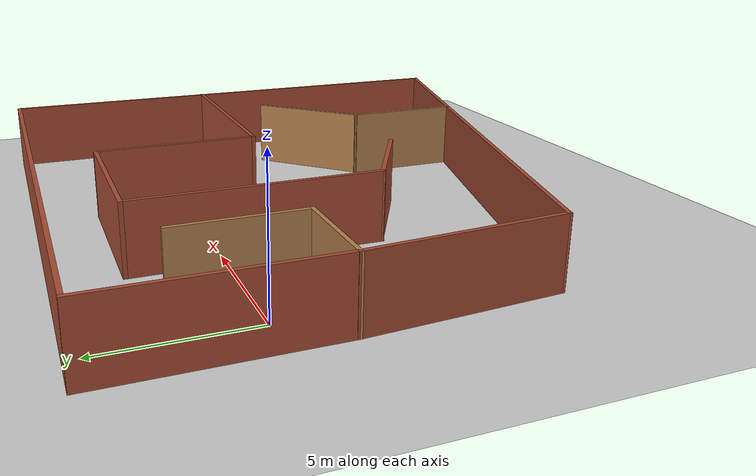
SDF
<sdf version="1.7">
 <world name="default">
  <light name="sun" type="directional">
   <pose>0 0 10 0 -0 0</pose>
   <diffuse>0.8 0.8 0.8 1</diffuse>
   <specular>0.2 0.2 0.2 1</specular>
   <attenuation>
    <range>1000</range>
    <constant>0.9</constant>
    <linear>0.01</linear>
    <quadratic>0.001</quadratic>
   </attenuation>
   <direction>-0.5 0.1 -0.9</direction>
   <spot><inner_angle>0</inner_angle><outer_angle>0</outer_angle><falloff>0</falloff></spot>
  </light>
  <model name="ground_plane">
   <static>1</static>
   <link name="link">
    <collision name="collision">
     <geometry><plane><normal>0 0 1</normal><size>100 100</size></plane></geometry>
     <surface>
      <contact><collide_bitmask>65535</collide_bitmask></contact>
      <friction><ode><mu>100</mu><mu2>50</mu2></ode></friction>
     </surface>
    </collision>
    <visual name="visual">
     <cast_shadows>0</cast_shadows>
     <geometry><plane><normal>0 0 1</normal><size>100 100</size></plane></geometry>
     <material>
      <script><uri>file://media/materials/scripts/gazebo.material</uri><name>Gazebo/Grey</name></script>
     </material>
    </visual>
   </link>
  </model>
  <gravity>0 0 -9.8</gravity>
  <magnetic_field>6e-06 2.3e-05 -4.2e-05</magnetic_field>
  <atmosphere type="adiabatic"/>
  <physics type="ode">
   <max_step_size>0.001</max_step_size>
   <real_time_factor>1</real_time_factor>
   <real_time_update_rate>1000</real_time_update_rate>
  </physics>
  <scene><ambient>0.4 0.4 0.4 1</ambient><background>0.7 0.7 0.7 1</background><shadows>1</shadows></scene>
  <audio><device>default</device></audio>
  <spherical_coordinates>
   <surface_model>EARTH_WGS84</surface_model>
   <latitude_deg>0</latitude_deg>
   <longitude_deg>0</longitude_deg>
   <elevation>0</elevation>
   <heading_deg>0</heading_deg>
  </spherical_coordinates>
  <model name="simple_maze">
   <pose>8.19795 -4.16539 0 0 -0 0</pose>
   <link name="Wall_0">
    <collision name="Wall_0_Collision">
     <geometry><box><size>7.5 0.15 2.5</size></box></geometry>
     <pose>0 0 1.25 0 -0 0</pose>
    </collision>
    <visual name="Wall_0_Visual">
     <pose>0 0 1.25 0 -0 0</pose>
     <geometry><box><size>7.5 0.15 2.5</size></box></geometry>
     <material>
      <script><uri>file://media/materials/scripts/gazebo.material</uri><name>Gazebo/Bricks</name></script>
      <ambient>1 1 1 1</ambient>
     </material>
     <meta><layer>0</layer></meta>
    </visual>
    <pose>-9.70403 5.88343 0 0 -0 1.5708</pose>
   </link>
   <link name="Wall_1">
    <collision name="Wall_1_Collision">
     <geometry><box><size>19.5 0.15 2.5</size></box></geometry>
     <pose>0 0 1.25 0 -0 0</pose>
    </collision>
    <visual name="Wall_1_Visual">
     <pose>0 0 1.25 0 -0 0</pose>
     <geometry><box><size>19.5 0.15 2.5</size></box></geometry>
     <material>
      <script><uri>file://media/materials/scripts/gazebo.material</uri><name>Gazebo/Bricks</name></script>
      <ambient>1 1 1 1</ambient>
     </material>
     <meta><layer>0</layer></meta>
    </visual>
    <pose>-0.029029 9.55843 0 0 -0 0</pose>
   </link>
   <link name="Wall_12">
    <collision name="Wall_12_Collision">
     <geometry><box><size>8.07036 0.15 2.5</size></box></geometry>
     <pose>0 0 1.25 0 -0 0</pose>
    </collision>
    <visual name="Wall_12_Visual">
     <pose>0 0 1.25 0 -0 0</pose>
     <geometry><box><size>8.07036 0.15 2.5</size></box></geometry>
     <material>
      <script><uri>file://media/materials/scripts/gazebo.material</uri><name>Gazebo/Bricks</name></script>
      <ambient>1 1 1 1</ambient>
     </material>
     <meta><layer>0</layer></meta>
    </visual>
    <pose>5.74839 1.49503 0 0 -0 0</pose>
   </link>
   <link name="Wall_16">
    <collision name="Wall_16_Collision">
     <geometry><box><size>6 0.15 2.5</size></box></geometry>
     <pose>0 0 1.25 0 -0 0</pose>
    </collision>
    <visual name="Wall_16_Visual">
     <pose>0 0 1.25 0 -0 0</pose>
     <geometry><box><size>6 0.15 2.5</size></box></geometry>
     <material>
      <script><uri>file://media/materials/scripts/gazebo.material</uri><name>Gazebo/Bricks</name></script>
      <ambient>1 1 1 1</ambient>
     </material>
     <meta><layer>0</layer></meta>
    </visual>
    <pose>1.78821 4.42003 0 0 -0 1.5708</pose>
   </link>
   <link name="Wall_17">
    <collision name="Wall_17_Collision">
     <geometry><box><size>5.75 0.15 2.5</size></box></geometry>
     <pose>0 0 1.25 0 -0 0</pose>
    </collision>
    <visual name="Wall_17_Visual">
     <pose>0 0 1.25 0 -0 0</pose>
     <geometry><box><size>5.75 0.15 2.5</size></box></geometry>
     <material>
      <script><uri>file://media/materials/scripts/gazebo.material</uri><name>Gazebo/Bricks</name></script>
      <ambient>1 1 1 1</ambient>
     </material>
     <meta><layer>0</layer></meta>
    </visual>
    <pose>-1.01179 7.34503 0 0 -0 3.14159</pose>
   </link>
   <link name="Wall_18">
    <collision name="Wall_18_Collision">
     <geometry><box><size>8.75 0.15 2.5</size></box></geometry>
     <pose>0 0 1.25 0 -0 0</pose>
    </collision>
    <visual name="Wall_18_Visual">
     <pose>0 0 1.25 0 -0 0</pose>
     <geometry><box><size>8.75 0.15 2.5</size></box></geometry>
     <material>
      <script><uri>file://media/materials/scripts/gazebo.material</uri><name>Gazebo/Bricks</name></script>
      <ambient>1 1 1 1</ambient>
     </material>
     <meta><layer>0</layer></meta>
    </visual>
    <pose>-3.81179 3.04503 0 0 -0 -1.5708</pose>
   </link>
   <link name="Wall_19">
    <collision name="Wall_19_Collision">
     <geometry><box><size>4 0.15 2.5</size></box></geometry>
     <pose>0 0 1.25 0 -0 0</pose>
    </collision>
    <visual name="Wall_19_Visual">
     <pose>0 0 1.25 0 -0 0</pose>
     <geometry><box><size>4 0.15 2.5</size></box></geometry>
     <material>
      <script><uri>file://media/materials/scripts/gazebo.material</uri><name>Gazebo/Bricks</name></script>
      <ambient>1 1 1 1</ambient>
     </material>
     <meta><layer>0</layer></meta>
    </visual>
    <pose>-2.14469 -2.21747 0 0 -0 -0.523599</pose>
   </link>
   <link name="Wall_2">
    <collision name="Wall_2_Collision">
     <geometry><box><size>19.25 0.15 2.5</size></box></geometry>
     <pose>0 0 1.25 0 -0 0</pose>
    </collision>
    <visual name="Wall_2_Visual">
     <pose>0 0 1.25 0 -0 0</pose>
     <geometry><box><size>19.25 0.15 2.5</size></box></geometry>
     <material>
      <script><uri>file://media/materials/scripts/gazebo.material</uri><name>Gazebo/Bricks</name></script>
      <ambient>1 1 1 1</ambient>
     </material>
     <meta><layer>0</layer></meta>
    </visual>
    <pose>9.64597 0.008427 0 0 -0 -1.5708</pose>
   </link>
   <link name="Wall_3">
    <collision name="Wall_3_Collision">
     <geometry><box><size>19.75 0.15 2.5</size></box></geometry>
     <pose>0 0 1.25 0 -0 0</pose>
    </collision>
    <visual name="Wall_3_Visual">
     <pose>0 0 1.25 0 -0 0</pose>
     <geometry><box><size>19.75 0.15 2.5</size></box></geometry>
     <material>
      <script><uri>file://media/materials/scripts/gazebo.material</uri><name>Gazebo/Bricks</name></script>
      <ambient>1 1 1 1</ambient>
     </material>
     <meta><layer>0</layer></meta>
    </visual>
    <pose>0.179898 -7.00515 0 0 -0 2.87979</pose>
   </link>
   <link name="Wall_4">
    <collision name="Wall_4_Collision">
     <geometry><box><size>6.84021 0.15 2.5</size></box></geometry>
     <pose>0 0 1.25 0 -0 0</pose>
    </collision>
    <visual name="Wall_4_Visual">
     <pose>0 0 1.25 0 -0 0</pose>
     <geometry><box><size>6.84021 0.15 2.5</size></box></geometry>
     <material>
      <script><uri>file://media/materials/scripts/gazebo.material</uri><name>Gazebo/Bricks</name></script>
      <ambient>1 1 1 1</ambient>
     </material>
     <meta><layer>0</layer></meta>
    </visual>
    <pose>-9.4951 -1.13015 0 0 -0 1.63329</pose>
   </link>
   <link name="Wall_5">
    <collision name="Wall_5_Collision">
     <geometry><box><size>3.5 0.15 2.5</size></box></geometry>
     <pose>0 0 1.25 0 -0 0</pose>
    </collision>
    <visual name="Wall_5_Visual">
     <pose>0 0 1.25 0 -0 0</pose>
     <geometry><box><size>3.5 0.15 2.5</size></box></geometry>
     <material>
      <script><uri>file://media/materials/scripts/gazebo.material</uri><name>Gazebo/Wood</name></script>
      <ambient>1 1 1 1</ambient>
     </material>
     <meta><layer>0</layer></meta>
    </visual>
    <pose>-8.02903 2.20843 0 0 -0 0</pose>
   </link>
   <link name="Wall_6">
    <collision name="Wall_6_Collision">
     <geometry><box><size>4.5 0.15 2.5</size></box></geometry>
     <pose>0 0 1.25 0 -0 0</pose>
    </collision>
    <visual name="Wall_6_Visual">
     <pose>0 0 1.25 0 -0 0</pose>
     <geometry><box><size>4.5 0.15 2.5</size></box></geometry>
     <material>
      <script><uri>file://media/materials/scripts/gazebo.material</uri><name>Gazebo/Wood</name></script>
      <ambient>1 1 1 1</ambient>
     </material>
     <meta><layer>0</layer></meta>
    </visual>
    <pose>-6.35403 4.38343 0 0 -0 1.5708</pose>
   </link>
   <link name="Wall_8">
    <collision name="Wall_8_Collision">
     <geometry><box><size>4.5 0.15 2.5</size></box></geometry>
     <pose>0 0 1.25 0 -0 0</pose>
    </collision>
    <visual name="Wall_8_Visual">
     <pose>0 0 1.25 0 -0 0</pose>
     <geometry><box><size>4.5 0.15 2.5</size></box></geometry>
     <material>
      <script><uri>file://media/materials/scripts/gazebo.material</uri><name>Gazebo/Wood</name></script>
      <ambient>1 1 1 1</ambient>
     </material>
     <meta><layer>0</layer></meta>
    </visual>
    <pose>3.57995 -5.72296 0 0 -0 1.5708</pose>
   </link>
   <link name="Wall_9">
    <collision name="Wall_9_Collision">
     <geometry><box><size>4.5 0.15 2.5</size></box></geometry>
     <pose>0 0 1.25 0 -0 0</pose>
    </collision>
    <visual name="Wall_9_Visual">
     <pose>0 0 1.25 0 -0 0</pose>
     <geometry><box><size>4.5 0.15 2.5</size></box></geometry>
     <material>
      <script><uri>file://media/materials/scripts/gazebo.material</uri><name>Gazebo/Wood</name></script>
      <ambient>1 1 1 1</ambient>
     </material>
     <meta><layer>0</layer></meta>
    </visual>
    <pose>5.11791 -2.01001 0 0 -0 0.785398</pose>
   </link>
   <static>1</static>
  </model>
  <model name="bookshelf">
   <static>1</static>
   <link name="link">
    <inertial><mass>1</mass></inertial>
    <collision name="back">
     <pose>0 0.005 0.6 0 -0 0</pose>
     <geometry><box><size>0.9 0.01 1.2</size></box></geometry>
    </collision>
    <visual name="visual1">
     <pose>0 0.005 0.6 0 -0 0</pose>
     <geometry><box><size>0.9 0.01 1.2</size></box></geometry>
     <material>
      <script><uri>file://media/materials/scripts/gazebo.material</uri><name>Gazebo/Wood</name></script>
     </material>
    </visual>
    <collision name="left_side">
     <pose>0.45 -0.195 0.6 0 -0 0</pose>
     <geometry><box><size>0.02 0.4 1.2</size></box></geometry>
    </collision>
    <visual name="visual2">
     <pose>0.45 -0.195 0.6 0 -0 0</pose>
     <geometry><box><size>0.02 0.4 1.2</size></box></geometry>
     <material>
      <script><uri>file://media/materials/scripts/gazebo.material</uri><name>Gazebo/Wood</name></script>
     </material>
    </visual>
    <collision name="right_side">
     <pose>-0.45 -0.195 0.6 0 -0 0</pose>
     <geometry><box><size>0.02 0.4 1.2</size></box></geometry>
    </collision>
    <visual name="visual3">
     <pose>-0.45 -0.195 0.6 0 -0 0</pose>
     <geometry><box><size>0.02 0.4 1.2</size></box></geometry>
     <material>
      <script><uri>file://media/materials/scripts/gazebo.material</uri><name>Gazebo/Wood</name></script>
     </material>
    </visual>
    <collision name="bottom">
     <pose>0 -0.195 0.03 0 -0 0</pose>
     <geometry><box><size>0.88 0.4 0.06</size></box></geometry>
    </collision>
    <visual name="visual4">
     <pose>0 -0.195 0.03 0 -0 0</pose>
     <geometry><box><size>0.88 0.4 0.06</size></box></geometry>
     <material>
      <script><uri>file://media/materials/scripts/gazebo.material</uri><name>Gazebo/Wood</name></script>
     </material>
    </visual>
    <collision name="top">
     <pose>0 -0.195 1.19 0 -0 0</pose>
     <geometry><box><size>0.88 0.4 0.02</size></box></geometry>
    </collision>
    <visual name="visual5">
     <pose>0 -0.195 1.19 0 -0 0</pose>
     <geometry><box><size>0.88 0.4 0.02</size></box></geometry>
     <material>
      <script><uri>file://media/materials/scripts/gazebo.material</uri><name>Gazebo/Wood</name></script>
     </material>
    </visual>
    <collision name="low_shelf">
     <pose>0 -0.195 0.43 0 -0 0</pose>
     <geometry><box><size>0.88 0.4 0.02</size></box></geometry>
    </collision>
    <visual name="visual6">
     <pose>0 -0.195 0.43 0 -0 0</pose>
     <geometry><box><size>0.88 0.4 0.02</size></box></geometry>
     <material>
      <script><uri>file://media/materials/scripts/gazebo.material</uri><name>Gazebo/Wood</name></script>
     </material>
    </visual>
    <collision name="high_shelf">
     <pose>0 -0.195 0.8 0 -0 0</pose>
     <geometry><box><size>0.88 0.4 0.02</size></box></geometry>
    </collision>
    <visual name="visual7">
     <pose>0 -0.195 0.8 0 -0 0</pose>
     <geometry><box><size>0.88 0.4 0.02</size></box></geometry>
     <material>
      <script><uri>file://media/materials/scripts/gazebo.material</uri><name>Gazebo/Wood</name></script>
     </material>
    </visual>
   </link>
   <pose>5.35625 2.45779 0 0 -0 0</pose>
  </model>
 </world>
</sdf>
